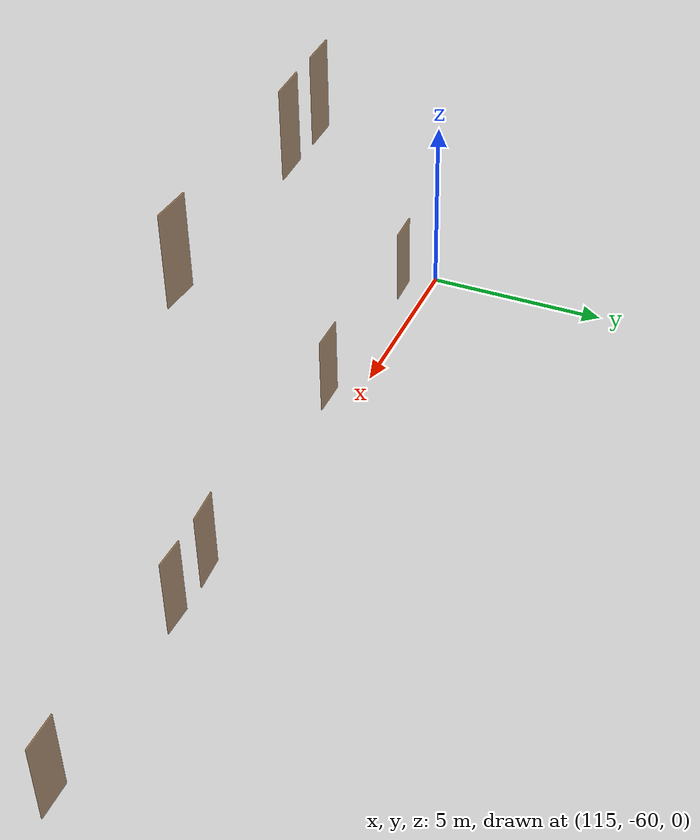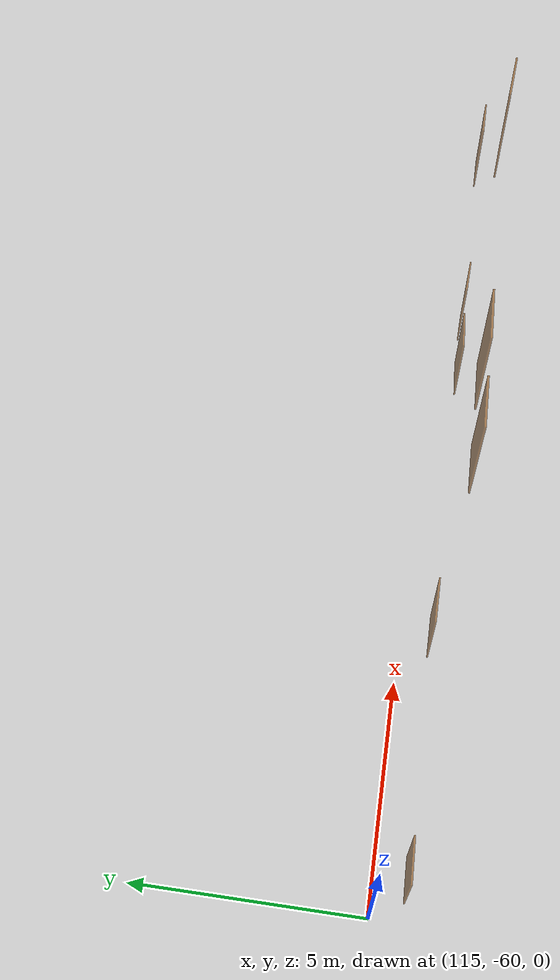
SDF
<sdf version="1.7">
 <world name="sim_world">
  <model name="puerta134">
   <pose>115.85781663504133 -60.68464189095374 0.0 0 0 -3.111739419291278</pose>
   <link name="right">
    <pose>0 0 1.11 0 0 0</pose>
    <visual name="right_visual">
     <geometry><box><size>0.9301737971432017 0.03 2.2</size></box></geometry>
     <material>
      <ambient>0.5 0.25 0 0.6</ambient>
      <diffuse>0.5 0.25 0 0.6</diffuse>
      <pbr><metal><metalness>0.0</metalness></metal></pbr>
     </material>
    </visual>
    <collision name="right_collision">
     <geometry><box><size>0.9301737971432017 0.03 2.2</size></box></geometry>
     <surface><contact><collide_bitmask>0x02</collide_bitmask></contact></surface>
    </collision>
    <inertial>
     <mass>50.0</mass>
     <inertia><ixx>20.17041666666667</ixx><iyy>23.771763720382513</iyy><izz>3.6088470537158424</izz></inertia>
    </inertial>
   </link>
   <joint name="right_joint" type="revolute">
    <parent>world</parent>
    <child>right</child>
    <axis><xyz>0 0 -1</xyz><limit><lower>0</lower><upper>1.57</upper></limit></axis>
    <pose>0.47008689857160085 0 0 0 0 0</pose>
   </joint>
   <plugin name="register_component" filename="libregister_component.so">
    <component name="Door">
     <v_max_door>0.5</v_max_door>
     <a_max_door>0.3</a_max_door>
     <a_nom_door>0.15</a_nom_door>
     <dx_min_door>0.01</dx_min_door>
     <f_max_door>500.0</f_max_door>
     <ros_interface>true</ros_interface>
     <door name="puerta134" type="SwingDoor" left_joint_name="empty_joint" right_joint_name="right_joint"/>
    </component>
   </plugin>
  </model>
  <model name="puerta137">
   <pose>121.21737721885395 -60.66989511063238 0.0 0 0 0.0013929279368439119</pose>
   <link name="right">
    <pose>0 0 1.11 0 0 0</pose>
    <visual name="right_visual">
     <geometry><box><size>1.0169743511113045 0.03 2.2</size></box></geometry>
     <material>
      <ambient>0.5 0.25 0 0.6</ambient>
      <diffuse>0.5 0.25 0 0.6</diffuse>
      <pbr><metal><metalness>0.0</metalness></metal></pbr>
     </material>
    </visual>
    <collision name="right_collision">
     <geometry><box><size>1.0169743511113045 0.03 2.2</size></box></geometry>
     <surface><contact><collide_bitmask>0x02</collide_bitmask></contact></surface>
    </collision>
    <inertial>
     <mass>50.0</mass>
     <inertia><ixx>20.17041666666667</ixx><iyy>24.475986795076082</iyy><izz>4.313070128409412</izz></inertia>
    </inertial>
   </link>
   <joint name="right_joint" type="revolute">
    <parent>world</parent>
    <child>right</child>
    <axis><xyz>0 0 1</xyz><limit><lower>0</lower><upper>1.57</upper></limit></axis>
    <pose>0.5134871755556523 0 0 0 0 0</pose>
   </joint>
   <plugin name="register_component" filename="libregister_component.so">
    <component name="Door">
     <v_max_door>0.5</v_max_door>
     <a_max_door>0.3</a_max_door>
     <a_nom_door>0.15</a_nom_door>
     <dx_min_door>0.01</dx_min_door>
     <f_max_door>500.0</f_max_door>
     <ros_interface>true</ros_interface>
     <door name="puerta137" type="SwingDoor" left_joint_name="empty_joint" right_joint_name="right_joint"/>
    </component>
   </plugin>
  </model>
  <model name="puerta141">
   <pose>128.20789804736637 -60.67061036103314 0.0 0 0 0.058779096150123535</pose>
   <link name="right">
    <pose>0 0 1.11 0 0 0</pose>
    <visual name="right_visual">
     <geometry><box><size>0.9454153690034505 0.03 2.2</size></box></geometry>
     <material>
      <ambient>0.5 0.25 0 0.6</ambient>
      <diffuse>0.5 0.25 0 0.6</diffuse>
      <pbr><metal><metalness>0.0</metalness></metal></pbr>
     </material>
    </visual>
    <collision name="right_collision">
     <geometry><box><size>0.9454153690034505 0.03 2.2</size></box></geometry>
     <surface><contact><collide_bitmask>0x02</collide_bitmask></contact></surface>
    </collision>
    <inertial>
     <mass>50.0</mass>
     <inertia><ixx>20.17041666666667</ixx><iyy>23.890875916449716</iyy><izz>3.727959249783044</izz></inertia>
    </inertial>
   </link>
   <joint name="right_joint" type="revolute">
    <parent>world</parent>
    <child>right</child>
    <axis><xyz>0 0 1</xyz><limit><lower>0</lower><upper>1.57</upper></limit></axis>
    <pose>0.47770768450172524 0 0 0 0 0</pose>
   </joint>
   <plugin name="register_component" filename="libregister_component.so">
    <component name="Door">
     <v_max_door>0.5</v_max_door>
     <a_max_door>0.3</a_max_door>
     <a_nom_door>0.15</a_nom_door>
     <dx_min_door>0.01</dx_min_door>
     <f_max_door>500.0</f_max_door>
     <ros_interface>true</ros_interface>
     <door name="puerta141" type="SwingDoor" left_joint_name="empty_joint" right_joint_name="right_joint"/>
    </component>
   </plugin>
  </model>
  <model name="puerta142">
   <pose>129.8208928849414 -60.656578831112526 0.0 0 0 3.1082583405142232</pose>
   <link name="right">
    <pose>0 0 1.11 0 0 0</pose>
    <visual name="right_visual">
     <geometry><box><size>0.8320229815396551 0.03 2.2</size></box></geometry>
     <material>
      <ambient>0.5 0.25 0 0.6</ambient>
      <diffuse>0.5 0.25 0 0.6</diffuse>
      <pbr><metal><metalness>0.0</metalness></metal></pbr>
     </material>
    </visual>
    <collision name="right_collision">
     <geometry><box><size>0.8320229815396551 0.03 2.2</size></box></geometry>
     <surface><contact><collide_bitmask>0x02</collide_bitmask></contact></surface>
    </collision>
    <inertial>
     <mass>50.0</mass>
     <inertia><ixx>20.17041666666667</ixx><iyy>23.051092674208913</iyy><izz>2.888176007542239</izz></inertia>
    </inertial>
   </link>
   <joint name="right_joint" type="revolute">
    <parent>world</parent>
    <child>right</child>
    <axis><xyz>0 0 -1</xyz><limit><lower>0</lower><upper>1.57</upper></limit></axis>
    <pose>0.4210114907698276 0 0 0 0 0</pose>
   </joint>
   <plugin name="register_component" filename="libregister_component.so">
    <component name="Door">
     <v_max_door>0.5</v_max_door>
     <a_max_door>0.3</a_max_door>
     <a_nom_door>0.15</a_nom_door>
     <dx_min_door>0.01</dx_min_door>
     <f_max_door>500.0</f_max_door>
     <ros_interface>true</ros_interface>
     <door name="puerta142" type="SwingDoor" left_joint_name="empty_joint" right_joint_name="right_joint"/>
    </component>
   </plugin>
  </model>
  <model name="puerta145">
   <pose>135.10878117124352 -60.670610361033134 0.0 0 0 0.0</pose>
   <link name="right">
    <pose>0 0 1.11 0 0 0</pose>
    <visual name="right_visual">
     <geometry><box><size>0.9438074461773931 0.03 2.2</size></box></geometry>
     <material>
      <ambient>0.5 0.25 0 0.6</ambient>
      <diffuse>0.5 0.25 0 0.6</diffuse>
      <pbr><metal><metalness>0.0</metalness></metal></pbr>
     </material>
    </visual>
    <collision name="right_collision">
     <geometry><box><size>0.9438074461773931 0.03 2.2</size></box></geometry>
     <surface><contact><collide_bitmask>0x02</collide_bitmask></contact></surface>
    </collision>
    <inertial>
     <mass>50.0</mass>
     <inertia><ixx>20.17041666666667</ixx><iyy>23.878218731082892</iyy><izz>3.7153020644162202</izz></inertia>
    </inertial>
   </link>
   <joint name="right_joint" type="revolute">
    <parent>world</parent>
    <child>right</child>
    <axis><xyz>0 0 1</xyz><limit><lower>0</lower><upper>1.57</upper></limit></axis>
    <pose>0.47690372308869655 0 0 0 0 0</pose>
   </joint>
   <plugin name="register_component" filename="libregister_component.so">
    <component name="Door">
     <v_max_door>0.5</v_max_door>
     <a_max_door>0.3</a_max_door>
     <a_nom_door>0.15</a_nom_door>
     <dx_min_door>0.01</dx_min_door>
     <f_max_door>500.0</f_max_door>
     <ros_interface>true</ros_interface>
     <door name="puerta145" type="SwingDoor" left_joint_name="empty_joint" right_joint_name="right_joint"/>
    </component>
   </plugin>
  </model>
  <model name="puerta184">
   <pose>128.20994541236252 -60.67555577585151 8.0 0 0 -0.0668391848047618</pose>
   <link name="right">
    <pose>0 0 1.11 0 0 0</pose>
    <visual name="right_visual">
     <geometry><box><size>0.925257699267076 0.03 2.2</size></box></geometry>
     <material>
      <ambient>0.5 0.25 0 0.6</ambient>
      <diffuse>0.5 0.25 0 0.6</diffuse>
      <pbr><metal><metalness>0.0</metalness></metal></pbr>
     </material>
    </visual>
    <collision name="right_collision">
     <geometry><box><size>0.925257699267076 0.03 2.2</size></box></geometry>
     <surface><contact><collide_bitmask>0x02</collide_bitmask></contact></surface>
    </collision>
    <inertial>
     <mass>50.0</mass>
     <inertia><ixx>20.17041666666667</ixx><iyy>23.733757541887517</iyy><izz>3.5708408752208456</izz></inertia>
    </inertial>
   </link>
   <joint name="right_joint" type="revolute">
    <parent>world</parent>
    <child>right</child>
    <axis><xyz>0 0 1</xyz><limit><lower>0</lower><upper>1.57</upper></limit></axis>
    <pose>0.467628849633538 0 0 0 0 0</pose>
   </joint>
   <plugin name="register_component" filename="libregister_component.so">
    <component name="Door">
     <v_max_door>0.5</v_max_door>
     <a_max_door>0.3</a_max_door>
     <a_nom_door>0.15</a_nom_door>
     <dx_min_door>0.01</dx_min_door>
     <f_max_door>500.0</f_max_door>
     <ros_interface>true</ros_interface>
     <door name="puerta184" type="SwingDoor" left_joint_name="empty_joint" right_joint_name="right_joint"/>
    </component>
   </plugin>
  </model>
  <model name="puerta186">
   <pose>122.88905469369767 -60.65940026458286 8.0 0 0 -3.113518060774728</pose>
   <link name="right">
    <pose>0 0 1.11 0 0 0</pose>
    <visual name="right_visual">
     <geometry><box><size>0.9594552245505468 0.03 2.2</size></box></geometry>
     <material>
      <ambient>0.5 0.25 0 0.6</ambient>
      <diffuse>0.5 0.25 0 0.6</diffuse>
      <pbr><metal><metalness>0.0</metalness></metal></pbr>
     </material>
    </visual>
    <collision name="right_collision">
     <geometry><box><size>0.9594552245505468 0.03 2.2</size></box></geometry>
     <surface><contact><collide_bitmask>0x02</collide_bitmask></contact></surface>
    </collision>
    <inertial>
     <mass>50.0</mass>
     <inertia><ixx>20.17041666666667</ixx><iyy>24.00230969965559</iyy><izz>3.8393930329889177</izz></inertia>
    </inertial>
   </link>
   <joint name="right_joint" type="revolute">
    <parent>world</parent>
    <child>right</child>
    <axis><xyz>0 0 -1</xyz><limit><lower>0</lower><upper>1.57</upper></limit></axis>
    <pose>0.4847276122752734 0 0 0 0 0</pose>
   </joint>
   <plugin name="register_component" filename="libregister_component.so">
    <component name="Door">
     <v_max_door>0.5</v_max_door>
     <a_max_door>0.3</a_max_door>
     <a_nom_door>0.15</a_nom_door>
     <dx_min_door>0.01</dx_min_door>
     <f_max_door>500.0</f_max_door>
     <ros_interface>true</ros_interface>
     <door name="puerta186" type="SwingDoor" left_joint_name="empty_joint" right_joint_name="right_joint"/>
    </component>
   </plugin>
  </model>
  <model name="puerta189">
   <pose>121.2246105754705 -60.68238754551456 8.0 0 0 0.01940434681469667</pose>
   <link name="right">
    <pose>0 0 1.11 0 0 0</pose>
    <visual name="right_visual">
     <geometry><box><size>0.9323241273069481 0.03 2.2</size></box></geometry>
     <material>
      <ambient>0.5 0.25 0 0.6</ambient>
      <diffuse>0.5 0.25 0 0.6</diffuse>
      <pbr><metal><metalness>0.0</metalness></metal></pbr>
     </material>
    </visual>
    <collision name="right_collision">
     <geometry><box><size>0.9323241273069481 0.03 2.2</size></box></geometry>
     <surface><contact><collide_bitmask>0x02</collide_bitmask></contact></surface>
    </collision>
    <inertial>
     <mass>50.0</mass>
     <inertia><ixx>20.17041666666667</ixx><iyy>23.788451159827765</iyy><izz>3.6255344931610938</izz></inertia>
    </inertial>
   </link>
   <joint name="right_joint" type="revolute">
    <parent>world</parent>
    <child>right</child>
    <axis><xyz>0 0 1</xyz><limit><lower>0</lower><upper>1.57</upper></limit></axis>
    <pose>0.4711620636534741 0 0 0 0 0</pose>
   </joint>
   <plugin name="register_component" filename="libregister_component.so">
    <component name="Door">
     <v_max_door>0.5</v_max_door>
     <a_max_door>0.3</a_max_door>
     <a_nom_door>0.15</a_nom_door>
     <dx_min_door>0.01</dx_min_door>
     <f_max_door>500.0</f_max_door>
     <ros_interface>true</ros_interface>
     <door name="puerta189" type="SwingDoor" left_joint_name="empty_joint" right_joint_name="right_joint"/>
    </component>
   </plugin>
  </model>
 </world>
</sdf>
